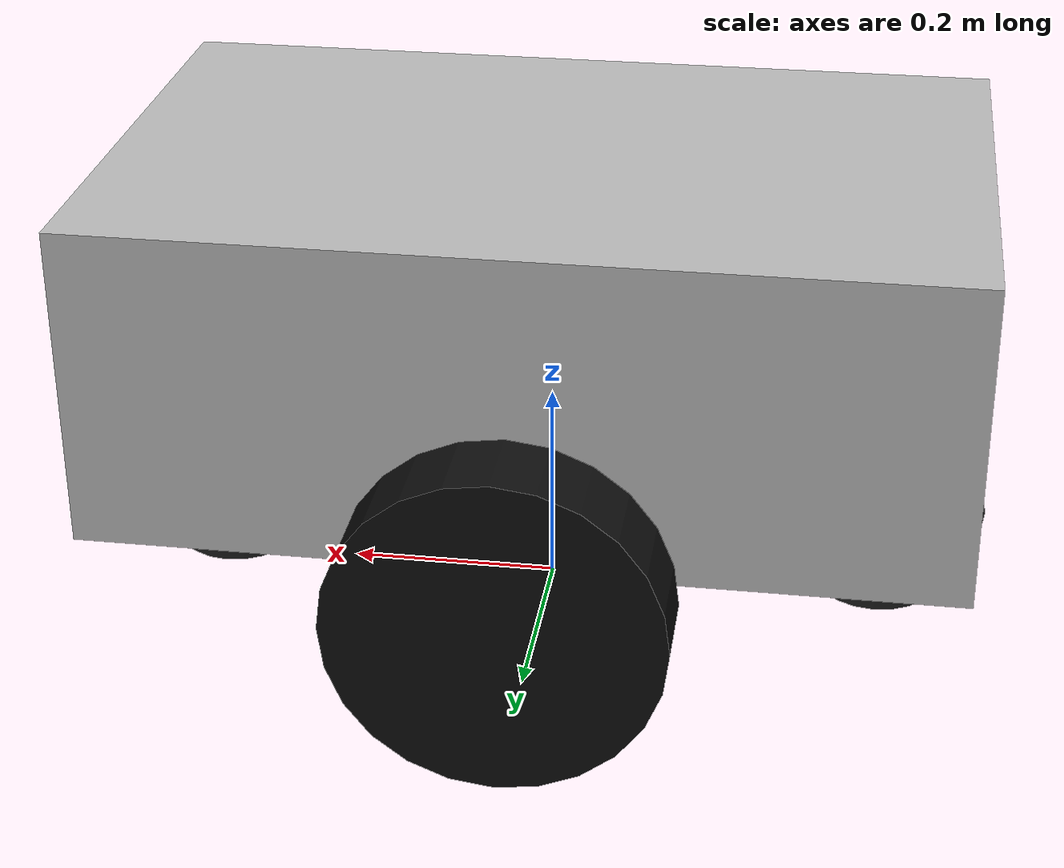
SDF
<?xml version="1.0"?>
<sdf version="1.7">

  <model name="simple_robot">

    <static>false</static>
    <self_collide>false</self_collide>
    <allow_auto_disable>false</allow_auto_disable>

    <!-- ================= BASE ================= -->

    <link name="base_link">

      <!-- Base center -->
      <pose>0 0 0.30 0 0 0</pose>

      <inertial>
        <mass>5.0</mass>

        <inertia>
          <ixx>0.20</ixx>
          <iyy>0.30</iyy>
          <izz>0.30</izz>
        </inertia>
      </inertial>

      <collision name="base_collision">
        <geometry>
          <box>
            <size>0.8 0.5 0.3</size>
          </box>
        </geometry>
      </collision>

      <visual name="base_visual">
        <geometry>
          <box>
            <size>0.8 0.5 0.3</size>
          </box>

          <material>
            <diffuse>0 0 1 1</diffuse>
          </material>
        </geometry>
      </visual>

    </link>

    <!-- ================= LEFT WHEEL ================= -->

    <link name="left_wheel">

      <pose>0 0.32 0.15 0 0 0</pose>

      <inertial>
        <mass>0.5</mass>

        <inertia>
          <ixx>0.01</ixx>
          <iyy>0.01</iyy>
          <izz>0.01</izz>
        </inertia>
      </inertial>

      <collision name="left_wheel_collision">

        <pose>0 0 0 1.5708 0 0</pose>

        <geometry>
          <cylinder>
            <radius>0.15</radius>
            <length>0.08</length>
          </cylinder>
        </geometry>

        <surface>

          <friction>
            <ode>
              <mu>10.0</mu>
              <mu2>10.0</mu2>
            </ode>
          </friction>

          <contact>
            <ode>
              <soft_cfm>0.0</soft_cfm>
              <soft_erp>0.2</soft_erp>
            </ode>
          </contact>

        </surface>

      </collision>

      <visual name="left_wheel_visual">

        <pose>0 0 0 1.5708 0 0</pose>

        <geometry>
          <cylinder>
            <radius>0.15</radius>
            <length>0.08</length>
          </cylinder>
        </geometry>

        <material>
          <diffuse>0.05 0.05 0.05 1</diffuse>
        </material>

      </visual>

    </link>

    <!-- ================= RIGHT WHEEL ================= -->

    <link name="right_wheel">

      <!-- Link frame stays unrotated; see note on left_wheel above. -->
      <pose>0 -0.32 0.15 0 0 0</pose>

      <inertial>
        <mass>0.5</mass>

        <inertia>
          <ixx>0.01</ixx>
          <iyy>0.01</iyy>
          <izz>0.01</izz>
        </inertia>
      </inertial>

      <collision name="right_wheel_collision">

        <pose>0 0 0 1.5708 0 0</pose>

        <geometry>
          <cylinder>
            <radius>0.15</radius>
            <length>0.08</length>
          </cylinder>
        </geometry>

        <surface>

          <friction>
            <ode>
              <mu>10.0</mu>
              <mu2>10.0</mu2>
            </ode>
          </friction>

          <contact>
            <ode>
              <soft_cfm>0.0</soft_cfm>
              <soft_erp>0.2</soft_erp>
            </ode>
          </contact>

        </surface>

      </collision>

      <visual name="right_wheel_visual">

        <pose>0 0 0 1.5708 0 0</pose>

        <geometry>
          <cylinder>
            <radius>0.15</radius>
            <length>0.08</length>
          </cylinder>
        </geometry>

        <material>
          <diffuse>0.05 0.05 0.05 1</diffuse>
        </material>

      </visual>

    </link>

    <!-- ================= LEFT JOINT ================= -->

    <joint name="left_joint" type="revolute">

      <parent>base_link</parent>
      <child>left_wheel</child>

      <axis>

        <xyz>0 1 0</xyz>

        <limit>
          <lower>-1000000</lower>
          <upper>1000000</upper>
          <effort>1000</effort>
          <velocity>100</velocity>
        </limit>

        <dynamics>
          <damping>0.01</damping>
          <friction>0.0</friction>
        </dynamics>

      </axis>

    </joint>

    <!-- ================= RIGHT JOINT ================= -->

    <joint name="right_joint" type="revolute">

      <parent>base_link</parent>
      <child>right_wheel</child>

      <axis>

        <!-- See note on the left joint above. -->
        <xyz>0 1 0</xyz>

        <limit>
          <lower>-1000000</lower>
          <upper>1000000</upper>
          <effort>1000</effort>
          <velocity>100</velocity>
        </limit>

        <dynamics>
          <damping>0.01</damping>
          <friction>0.0</friction>
        </dynamics>

      </axis>

    </joint>

    <!-- ================= CASTER WHEELS (front + rear support) ================= -->

    <link name="caster_wheel_front">

      <pose>0.32 0 0.10 0 0 0</pose>

      <inertial>
        <mass>0.1</mass>

        <inertia>
          <ixx>0.0001</ixx>
          <iyy>0.0001</iyy>
          <izz>0.0001</izz>
        </inertia>
      </inertial>

      <collision name="caster_front_collision">
        <geometry>
          <sphere>
            <radius>0.10</radius>
          </sphere>
        </geometry>

        <surface>
          <friction>
            <ode>
              <mu>0.01</mu>
              <mu2>0.01</mu2>
            </ode>
          </friction>
        </surface>
      </collision>

      <visual name="caster_front_visual">
        <geometry>
          <sphere>
            <radius>0.10</radius>
          </sphere>
        </geometry>

        <material>
          <diffuse>0.1 0.1 0.1 1</diffuse>
        </material>
      </visual>

    </link>

    <link name="caster_wheel_rear">

      <pose>-0.32 0 0.10 0 0 0</pose>

      <inertial>
        <mass>0.1</mass>

        <inertia>
          <ixx>0.0001</ixx>
          <iyy>0.0001</iyy>
          <izz>0.0001</izz>
        </inertia>
      </inertial>

      <collision name="caster_rear_collision">
        <geometry>
          <sphere>
            <radius>0.10</radius>
          </sphere>
        </geometry>

        <surface>
          <friction>
            <ode>
              <mu>0.01</mu>
              <mu2>0.01</mu2>
            </ode>
          </friction>
        </surface>
      </collision>

      <visual name="caster_rear_visual">
        <geometry>
          <sphere>
            <radius>0.10</radius>
          </sphere>
        </geometry>

        <material>
          <diffuse>0.1 0.1 0.1 1</diffuse>
        </material>
      </visual>

    </link>

    <!-- ================= CASTER JOINTS ================= -->

    <joint name="caster_front_joint" type="fixed">
      <parent>base_link</parent>
      <child>caster_wheel_front</child>
    </joint>

    <joint name="caster_rear_joint" type="fixed">
      <parent>base_link</parent>
      <child>caster_wheel_rear</child>
    </joint>

    <!-- ================= LIDAR ================= -->

    <link name="lidar_link">

      <pose>0.35 0 0.55 0 0 0</pose>

      <inertial>
        <mass>0.1</mass>

        <inertia>
          <ixx>0.0001</ixx>
          <iyy>0.0001</iyy>
          <izz>0.0001</izz>
        </inertia>
      </inertial>

      <sensor name="lidar_sensor" type="gpu_lidar">

        <topic>/lidar</topic>

        <update_rate>10</update_rate>

        <lidar>

          <scan>

            <horizontal>

              <samples>360</samples>
              <resolution>1</resolution>

              <min_angle>-3.14159</min_angle>
              <max_angle>3.14159</max_angle>

            </horizontal>

          </scan>

          <range>

            <min>0.1</min>
            <max>10.0</max>
            <resolution>0.01</resolution>

          </range>

        </lidar>

        <always_on>1</always_on>
        <visualize>true</visualize>

      </sensor>

    </link>

    <!-- ================= LIDAR JOINT ================= -->
    <!-- Without this the lidar_link has no joint at all, making it an
         independent free body that just falls away from the robot. -->

    <joint name="lidar_joint" type="fixed">
      <parent>base_link</parent>
      <child>lidar_link</child>
    </joint>

    <!-- ================= DIFFERENTIAL DRIVE ================= -->

    <plugin
      filename="libignition-gazebo-diff-drive-system.so"
      name="ignition::gazebo::systems::DiffDrive">

      <left_joint>left_joint</left_joint>
      <right_joint>right_joint</right_joint>

      <wheel_separation>0.64</wheel_separation>
      <wheel_radius>0.15</wheel_radius>

      <odom_publish_frequency>30</odom_publish_frequency>

      <topic>/cmd_vel</topic>

      <max_linear_acceleration>2.0</max_linear_acceleration>
      <max_angular_acceleration>2.0</max_angular_acceleration>

      <max_linear_velocity>2.0</max_linear_velocity>
      <max_angular_velocity>2.0</max_angular_velocity>

    </plugin>

  </model>

</sdf>
